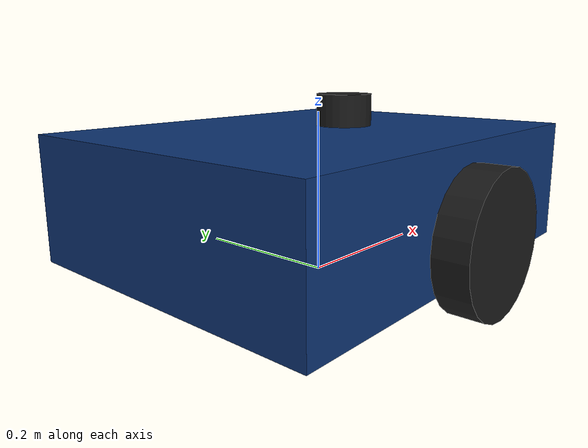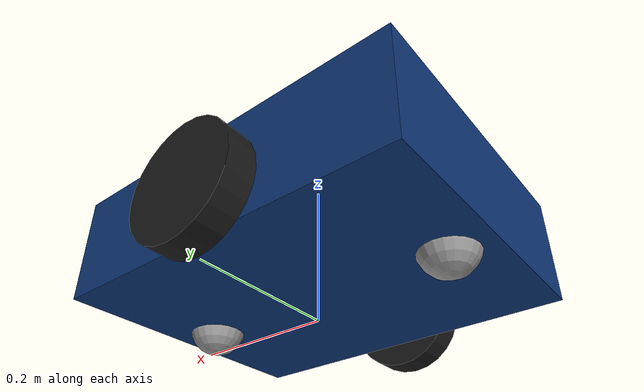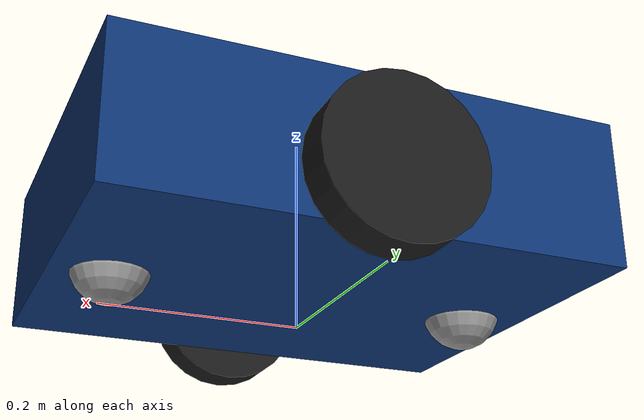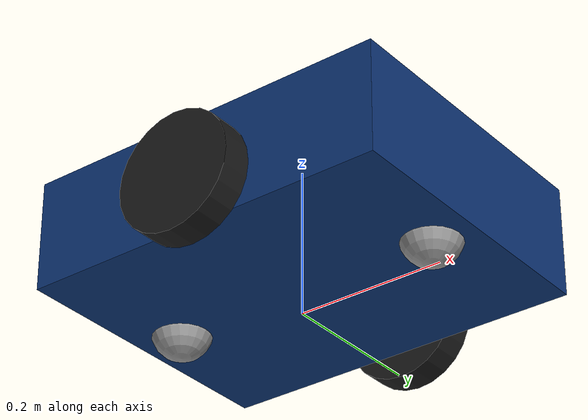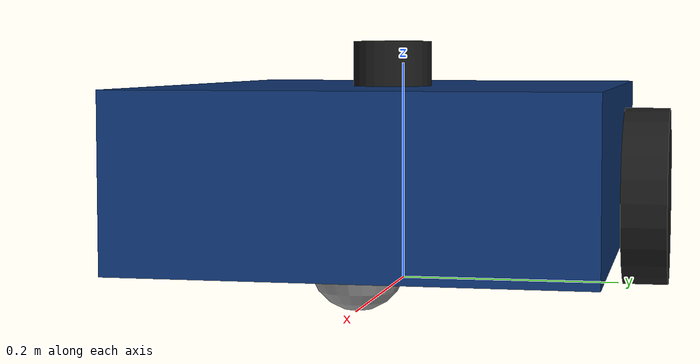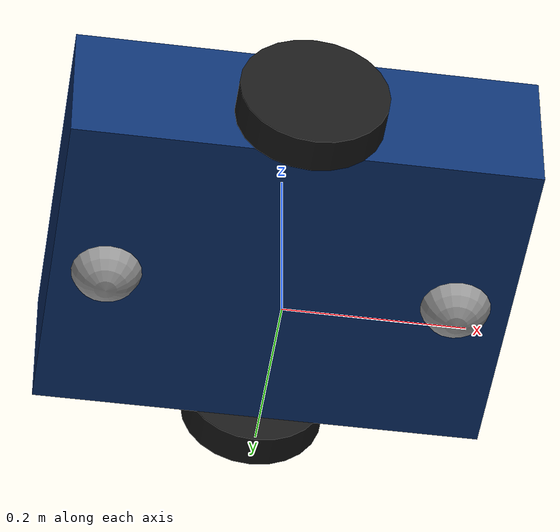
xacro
<?xml version="1.0"?>
<!--
  CBU Autonomous Robot simulation model: differential drive base + 2D 360° LiDAR.
  Dimensions are placeholders. Update them to match the real chassis.
-->
<robot name="cash_bot" xmlns:xacro="http://www.ros.org/wiki/xacro">

  <!-- ===== Parameters (edit these to match the real robot) ===== -->
  <xacro:property name="base_length"  value="0.50"/>
  <xacro:property name="base_width"   value="0.40"/>
  <xacro:property name="base_height"  value="0.15"/>
  <xacro:property name="base_mass"    value="8.0"/>
  <xacro:property name="ground_clearance" value="0.03"/>

  <xacro:property name="wheel_radius" value="0.08"/>
  <xacro:property name="wheel_width"  value="0.04"/>
  <xacro:property name="wheel_mass"   value="0.5"/>
  <xacro:property name="wheel_x"      value="0.0"/>    <!-- drive axle at chassis center, so odometry is exact -->
  <xacro:property name="wheel_sep"    value="0.45"/>   <!-- center-to-center -->

  <xacro:property name="caster_radius" value="0.04"/>
  <xacro:property name="caster_x"      value="0.19"/>   <!-- front and rear casters at +/- this -->

  <xacro:property name="lidar_radius" value="0.035"/>
  <xacro:property name="lidar_height" value="0.04"/>
  <xacro:property name="lidar_x"      value="0.05"/>
  <!-- LiDAR: LDROBOT STL-27L (D800 kit); keep the sensor block below in sync with cash_rl/spec.py -->
  <xacro:property name="lidar_range"  value="25.0"/>

  <!-- ===== Inertia helpers ===== -->
  <xacro:macro name="box_inertia" params="m x y z">
    <inertial>
      <mass value="${m}"/>
      <inertia ixx="${m*(y*y+z*z)/12}" ixy="0" ixz="0"
               iyy="${m*(x*x+z*z)/12}" iyz="0"
               izz="${m*(x*x+y*y)/12}"/>
    </inertial>
  </xacro:macro>

  <xacro:macro name="cylinder_inertia" params="m r h">
    <inertial>
      <mass value="${m}"/>
      <inertia ixx="${m*(3*r*r+h*h)/12}" ixy="0" ixz="0"
               iyy="${m*(3*r*r+h*h)/12}" iyz="0"
               izz="${m*r*r/2}"/>
    </inertial>
  </xacro:macro>

  <xacro:macro name="sphere_inertia" params="m r">
    <inertial>
      <mass value="${m}"/>
      <inertia ixx="${2*m*r*r/5}" ixy="0" ixz="0"
               iyy="${2*m*r*r/5}" iyz="0"
               izz="${2*m*r*r/5}"/>
    </inertial>
  </xacro:macro>

  <!-- ===== Materials ===== -->
  <material name="lancer_blue"><color rgba="0.05 0.20 0.45 1"/></material>
  <material name="black"><color rgba="0.1 0.1 0.1 1"/></material>
  <material name="gray"><color rgba="0.6 0.6 0.6 1"/></material>

  <!-- ===== Links ===== -->
  <!-- base_footprint: on the ground, directly under the robot center -->
  <link name="base_footprint"/>

  <!-- base_link: at wheel-axle height -->
  <joint name="base_joint" type="fixed">
    <parent link="base_footprint"/>
    <child link="base_link"/>
    <origin xyz="0 0 ${wheel_radius}" rpy="0 0 0"/>
  </joint>

  <xacro:property name="chassis_z" value="${ground_clearance + base_height/2 - wheel_radius}"/>

  <link name="base_link">
    <visual>
      <origin xyz="0 0 ${chassis_z}"/>
      <geometry><box size="${base_length} ${base_width} ${base_height}"/></geometry>
      <material name="lancer_blue"/>
    </visual>
    <collision>
      <origin xyz="0 0 ${chassis_z}"/>
      <geometry><box size="${base_length} ${base_width} ${base_height}"/></geometry>
    </collision>
    <inertial>
      <origin xyz="0 0 ${chassis_z}"/>
      <mass value="${base_mass}"/>
      <inertia ixx="${base_mass*(base_width**2+base_height**2)/12}" ixy="0" ixz="0"
               iyy="${base_mass*(base_length**2+base_height**2)/12}" iyz="0"
               izz="${base_mass*(base_length**2+base_width**2)/12}"/>
    </inertial>
  </link>

  <!-- Drive wheels -->
  <xacro:macro name="wheel" params="side y_sign">
    <link name="${side}_wheel_link">
      <visual>
        <origin rpy="${pi/2} 0 0"/>
        <geometry><cylinder radius="${wheel_radius}" length="${wheel_width}"/></geometry>
        <material name="black"/>
      </visual>
      <collision>
        <origin rpy="${pi/2} 0 0"/>
        <geometry><cylinder radius="${wheel_radius}" length="${wheel_width}"/></geometry>
      </collision>
      <inertial>
        <origin rpy="${pi/2} 0 0"/>
        <mass value="${wheel_mass}"/>
        <inertia ixx="${wheel_mass*(3*wheel_radius**2+wheel_width**2)/12}" ixy="0" ixz="0"
                 iyy="${wheel_mass*(3*wheel_radius**2+wheel_width**2)/12}" iyz="0"
                 izz="${wheel_mass*wheel_radius**2/2}"/>
      </inertial>
    </link>

    <joint name="${side}_wheel_joint" type="continuous">
      <parent link="base_link"/>
      <child link="${side}_wheel_link"/>
      <origin xyz="${wheel_x} ${y_sign*wheel_sep/2} 0"/>
      <axis xyz="0 1 0"/>
    </joint>

    <gazebo reference="${side}_wheel_link">
      <mu1>1.0</mu1>
      <mu2>1.0</mu2>
    </gazebo>
  </xacro:macro>

  <xacro:wheel side="left"  y_sign="1"/>
  <xacro:wheel side="right" y_sign="-1"/>

  <!-- Front and rear casters (near-frictionless spheres) -->
  <xacro:macro name="caster" params="name x_sign">
    <link name="${name}_caster_link">
      <visual>
        <geometry><sphere radius="${caster_radius}"/></geometry>
        <material name="gray"/>
      </visual>
      <collision>
        <geometry><sphere radius="${caster_radius}"/></geometry>
      </collision>
      <xacro:sphere_inertia m="0.1" r="${caster_radius}"/>
    </link>

    <joint name="${name}_caster_joint" type="fixed">
      <parent link="base_link"/>
      <child link="${name}_caster_link"/>
      <origin xyz="${x_sign*caster_x} 0 ${caster_radius - wheel_radius}"/>
    </joint>

    <gazebo reference="${name}_caster_link">
      <mu1>0.001</mu1>
      <mu2>0.001</mu2>
    </gazebo>
  </xacro:macro>

  <xacro:caster name="front" x_sign="1"/>
  <xacro:caster name="rear"  x_sign="-1"/>

  <!-- LiDAR -->
  <link name="lidar_link">
    <visual>
      <geometry><cylinder radius="${lidar_radius}" length="${lidar_height}"/></geometry>
      <material name="black"/>
    </visual>
    <collision>
      <geometry><cylinder radius="${lidar_radius}" length="${lidar_height}"/></geometry>
    </collision>
    <xacro:cylinder_inertia m="0.17" r="${lidar_radius}" h="${lidar_height}"/>
  </link>

  <joint name="lidar_joint" type="fixed">
    <parent link="base_link"/>
    <child link="lidar_link"/>
    <origin xyz="${lidar_x} 0 ${chassis_z + base_height/2 + lidar_height/2}"/>
  </joint>

  <!-- ===== Gazebo sensors and plugins ===== -->
  <gazebo reference="lidar_link">
    <sensor name="lidar" type="gpu_lidar">
      <gz_frame_id>lidar_link</gz_frame_id>
      <topic>/scan</topic>
      <update_rate>10</update_rate>
      <always_on>true</always_on>
      <visualize>true</visualize>
      <lidar>
        <scan>
          <horizontal>
            <samples>2160</samples>
            <resolution>1</resolution>
            <min_angle>-3.14159</min_angle>
            <max_angle>3.14159</max_angle>
          </horizontal>
          <vertical>
            <samples>1</samples>
            <resolution>1</resolution>
            <min_angle>0</min_angle>
            <max_angle>0</max_angle>
          </vertical>
        </scan>
        <range>
          <min>0.03</min>
          <max>${lidar_range}</max>
          <resolution>0.01</resolution>
        </range>
        <noise>
          <type>gaussian</type>
          <mean>0.0</mean>
          <stddev>0.015</stddev>
        </noise>
      </lidar>
    </sensor>
  </gazebo>

  <gazebo>
    <plugin filename="gz-sim-diff-drive-system" name="gz::sim::systems::DiffDrive">
      <left_joint>left_wheel_joint</left_joint>
      <right_joint>right_wheel_joint</right_joint>
      <wheel_separation>${wheel_sep}</wheel_separation>
      <wheel_radius>${wheel_radius}</wheel_radius>
      <max_linear_acceleration>1.0</max_linear_acceleration>
      <max_angular_acceleration>2.0</max_angular_acceleration>
      <topic>/cmd_vel</topic>
      <odom_topic>/odom</odom_topic>
      <tf_topic>/tf</tf_topic>
      <frame_id>odom</frame_id>
      <child_frame_id>base_footprint</child_frame_id>
      <odom_publish_frequency>30</odom_publish_frequency>
    </plugin>

    <!-- Ground-truth model pose on /model/cash_bot/pose, for cash_rl's goal
         observations and reward (odom drifts). Sim-only: the real robot gets its
         pose from localization. -->
    <plugin filename="gz-sim-pose-publisher-system" name="gz::sim::systems::PosePublisher">
      <publish_model_pose>true</publish_model_pose>
      <publish_link_pose>false</publish_link_pose>
      <publish_nested_model_pose>false</publish_nested_model_pose>
      <publish_visual_pose>false</publish_visual_pose>
      <publish_collision_pose>false</publish_collision_pose>
      <publish_sensor_pose>false</publish_sensor_pose>
      <use_pose_vector_msg>false</use_pose_vector_msg>
      <update_frequency>30</update_frequency>
    </plugin>

    <plugin filename="gz-sim-joint-state-publisher-system"
            name="gz::sim::systems::JointStatePublisher">
      <topic>/joint_states</topic>
    </plugin>
  </gazebo>

</robot>
